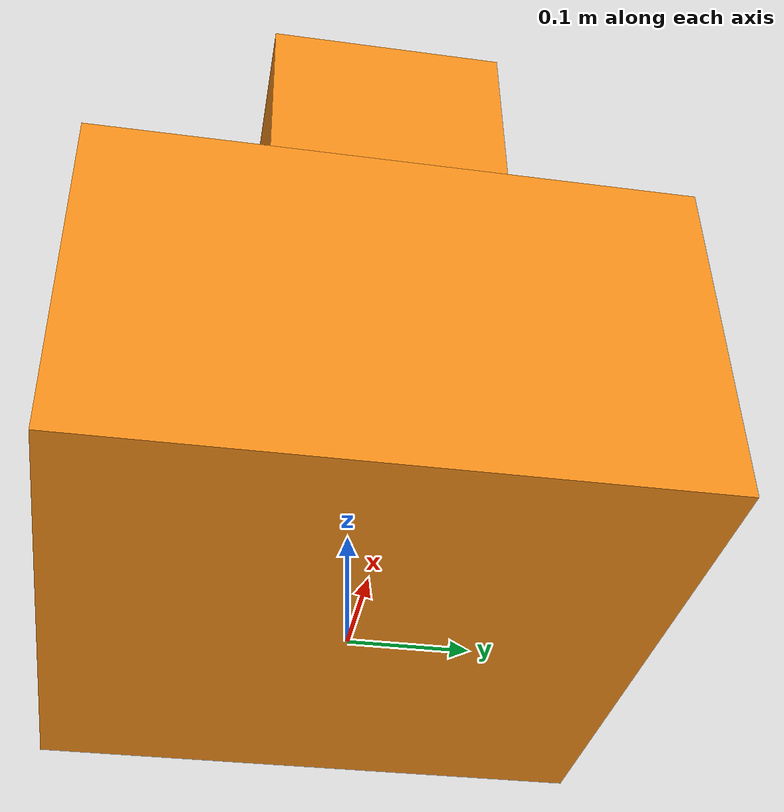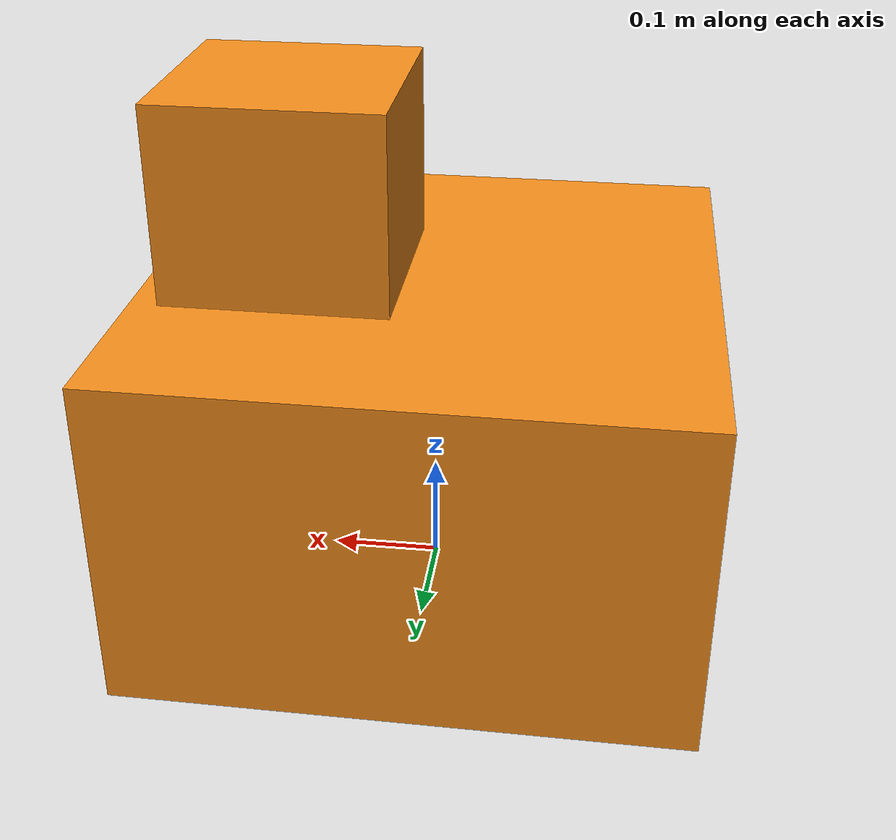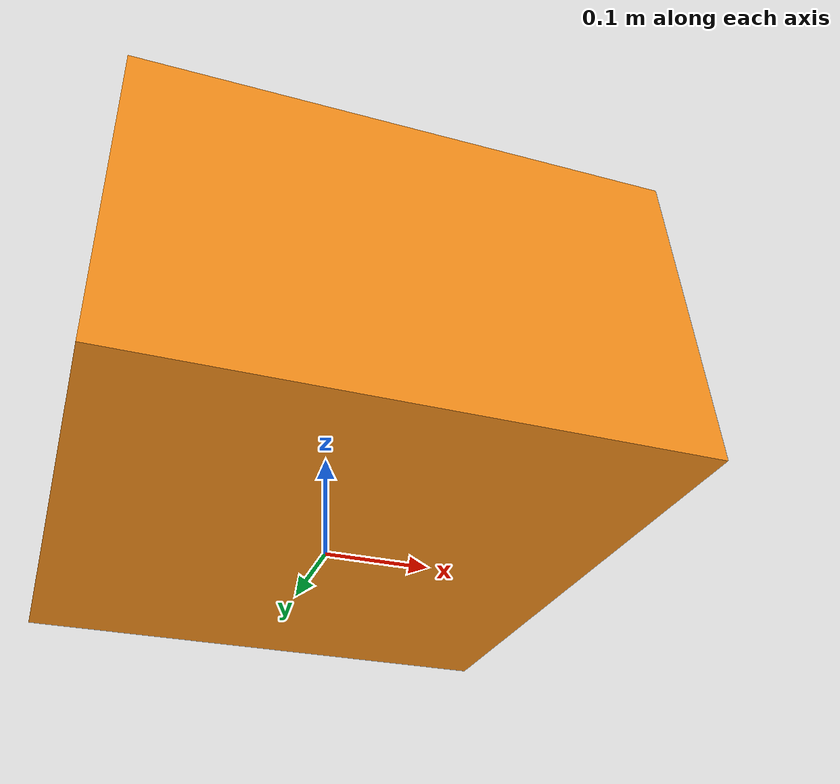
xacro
<?xml version="1.0"?>
<!-- Revolute-Revolute Manipulator -->
<robot name="boxbot" xmlns:xacro="http://www.ros.org/wiki/xacro">

  <!-- Constants for robot dimensions -->
  <xacro:property name="PI" value="3.1415926535897931"/>
  <xacro:property name="mass" value="5" /> <!-- arbitrary value for mass -->
  <xacro:property name="width" value="0.5" /> <!-- Square dimensions (widthxwidth) of beams -->
  <xacro:property name="height1" value="0.3" /> <!-- Link 1 -->

  <!-- Import all Gazebo-customization elements, including Gazebo colors -->
  <xacro:include filename="$(find gazebo_model_velocity_plugin)/launch/boxbot.gazebo" />
  <!-- Import Rviz colors -->
  <xacro:include filename="$(find gazebo_model_velocity_plugin)/launch/materials.xacro" />

  <!-- Base Link -->
  <link name="link1">
    <collision>
      <origin xyz="0 0 ${height1/2}" rpy="0 0 0"/>
      <geometry>
	<box size="${width} ${width} ${height1}"/>
      </geometry>
    </collision>

    <visual>
      <origin xyz="0 0 ${height1/2}" rpy="0 0 0"/>
      <geometry>
	<box size="${width} ${width} ${height1}"/>
      </geometry>
      <material name="orange"/>
    </visual>

    <inertial>
      <origin xyz="0 0 ${height1/2}" rpy="0 0 0"/>
      <mass value="${mass}"/>
      <inertia
	  ixx="${mass / 12.0 * (width*width + height1*height1)}" ixy="0.0" ixz="0.0"
	  iyy="${mass / 12.0 * (height1*height1 + width*width)}" iyz="0.0"
	  izz="${mass / 12.0 * (width*width + width*width)}"/>
    </inertial>
  </link>

  <joint name="joint1" type="fixed">
    <parent link="link1"/>
    <child link="link2"/>
    <origin xyz="${width/4} 0 ${height1*1.25}" rpy="0 0 0"/>
  </joint>

  <!-- Box acting as front side -->
  <link name="link2">
    <collision>
      <origin xyz="0 0 0" rpy="0 0 0"/>
      <geometry>
        <box size="0.2 0.2 0.2"/>
      </geometry>
    </collision>

    <visual>
      <origin xyz="0 0 0" rpy="0 0 0"/>
      <geometry>
        <box size="0.2 0.2 0.2"/>
      </geometry>
      <material name="orange"/>
    </visual>

    <inertial>
      <origin xyz="0 0 0" rpy="0 0 0"/>
      <mass value="${0.1}"/>
      <inertia
        ixx="${mass/2 / 12.0 * (0.2*0.2 + 0.2*0.2)}" ixy="0.0" ixz="0.0"
        iyy="${mass/2 / 12.0 * (0.2*0.2 + 0.2*0.2)}" iyz="0.0"
        izz="${mass/2 / 12.0 * (0.2*0.2 + 0.2*0.2)}"/>
    </inertial>
  </link>

</robot>
